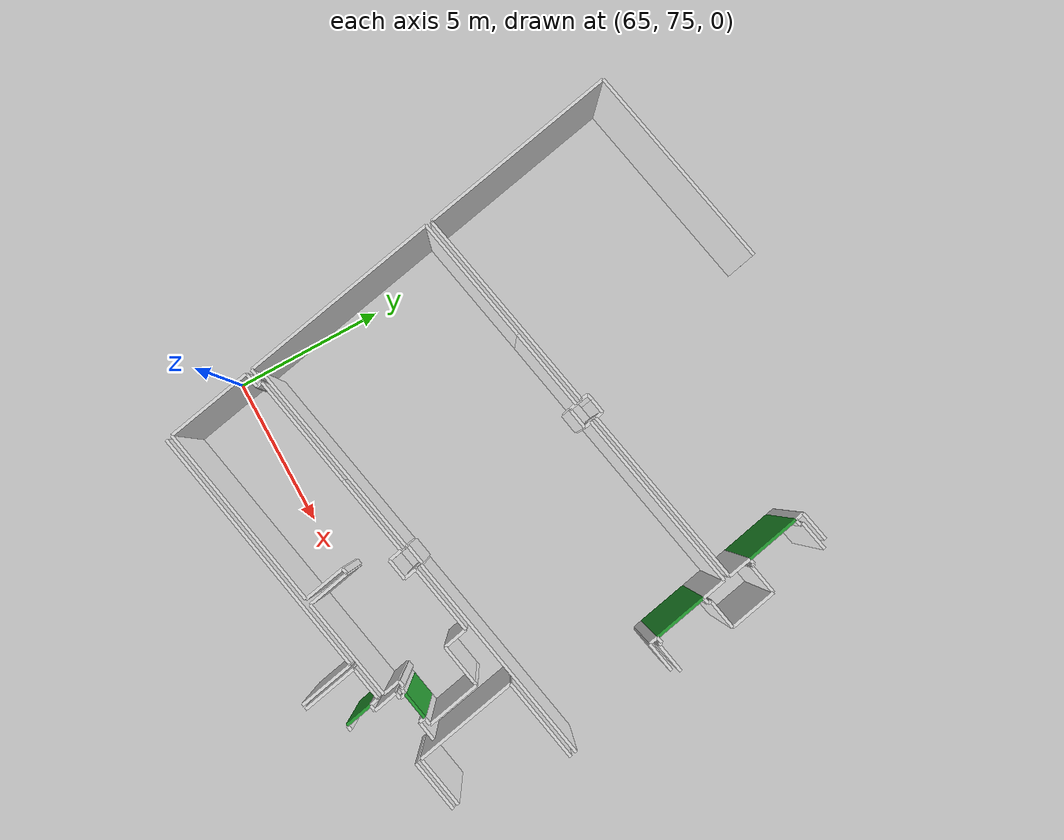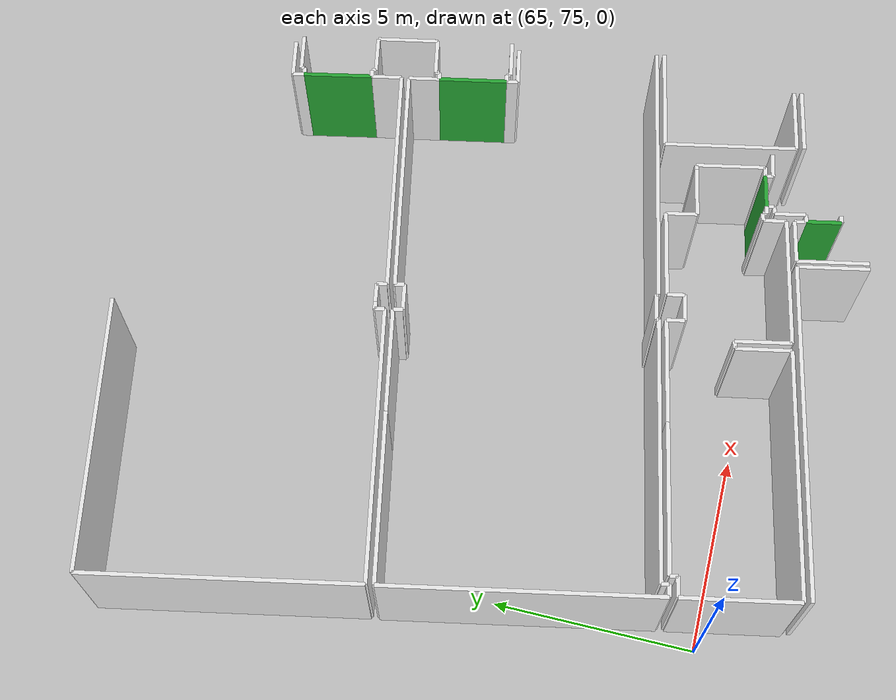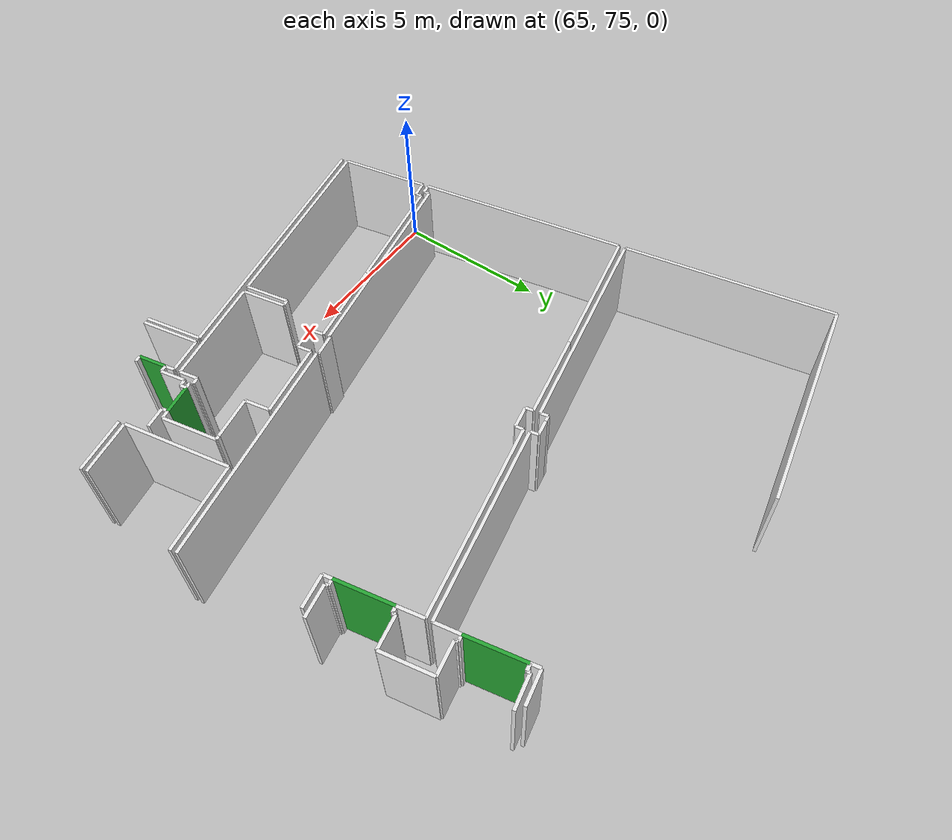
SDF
<sdf version="1.6">
 <world name="default">
  <model name="wall_77.2_87.2_1.5">
   <static>true</static>
   <pose>77.19000000000233 87.18999999994412 1.5 0 0 -1.3690339824572944</pose>
   <link name="link">
    <visual name="visual">
     <geometry><box><size>1.7964409256090668 0.1 3</size></box></geometry>
     <material>
      <script><uri>file://media/materials/scripts/gazebo.material</uri><name>Gazebo/Green</name></script>
     </material>
    </visual>
    <collision name="collision"><geometry><box><size>1.7964409256090668 0.1 3</size></box></geometry></collision>
   </link>
  </model>
  <model name="wall_77.9_83.7_1.5">
   <static>true</static>
   <pose>77.88500000000931 83.6699999999255 1.5 0 0 -1.3744936626731843</pose>
   <link name="link">
    <visual name="visual">
     <geometry><box><size>1.7944637079631676 0.1 3</size></box></geometry>
     <material>
      <script><uri>file://media/materials/scripts/gazebo.material</uri><name>Gazebo/Green</name></script>
     </material>
    </visual>
    <collision name="collision"><geometry><box><size>1.7944637079631676 0.1 3</size></box></geometry></collision>
   </link>
  </model>
  <model name="wall_76.4_75.6_1.5">
   <static>true</static>
   <pose>76.39000000001397 75.57500000018626 1.5 0 0 0.19083110263865674</pose>
   <link name="link">
    <visual name="visual">
     <geometry><box><size>0.8962700485807075 0.1 3</size></box></geometry>
     <material>
      <script><uri>file://media/materials/scripts/gazebo.material</uri><name>Gazebo/Green</name></script>
     </material>
    </visual>
    <collision name="collision"><geometry><box><size>0.8962700485807075 0.1 3</size></box></geometry></collision>
   </link>
  </model>
  <model name="wall_75.8_74.0_1.5">
   <static>true</static>
   <pose>75.83999999999651 74.0 1.5 0 0 -1.3690339824572944</pose>
   <link name="link">
    <visual name="visual">
     <geometry><box><size>0.8982204628045334 0.1 3</size></box></geometry>
     <material>
      <script><uri>file://media/materials/scripts/gazebo.material</uri><name>Gazebo/Green</name></script>
     </material>
    </visual>
    <collision name="collision"><geometry><box><size>0.8982204628045334 0.1 3</size></box></geometry></collision>
   </link>
  </model>
  <model name="wall_78.7_75.2_1.5">
   <static>true</static>
   <pose>78.66500000000815 75.16500000003725 1.5 0 0 -2.946501237082923</pose>
   <link name="link">
    <visual name="visual">
     <geometry><box><size>1.7022925717968513 0.1 3</size></box></geometry>
     <material>
      <script><uri>file://media/materials/scripts/gazebo.material</uri><name>Gazebo/White</name></script>
     </material>
    </visual>
    <collision name="collision"><geometry><box><size>1.7022925717968513 0.1 3</size></box></geometry></collision>
   </link>
  </model>
  <model name="wall_77.5_76.7_1.5">
   <static>true</static>
   <pose>77.5 76.67500000004657 1.5 0 0 1.7653199818507113</pose>
   <link name="link">
    <visual name="visual">
     <geometry><box><size>3.414395993534876 0.1 3</size></box></geometry>
     <material>
      <script><uri>file://media/materials/scripts/gazebo.material</uri><name>Gazebo/White</name></script>
     </material>
    </visual>
    <collision name="collision"><geometry><box><size>3.414395993534876 0.1 3</size></box></geometry></collision>
   </link>
  </model>
  <model name="wall_78.5_78.6_1.5">
   <static>true</static>
   <pose>78.51999999998952 78.61499999999069 1.5 0 0 0.19383178298877288</pose>
   <link name="link">
    <visual name="visual">
     <geometry><box><size>2.7515268488324223 0.1 3</size></box></geometry>
     <material>
      <script><uri>file://media/materials/scripts/gazebo.material</uri><name>Gazebo/White</name></script>
     </material>
    </visual>
    <collision name="collision"><geometry><box><size>2.7515268488324223 0.1 3</size></box></geometry></collision>
   </link>
  </model>
  <model name="wall_77.0_88.2_1.5">
   <static>true</static>
   <pose>76.98000000001048 88.21499999985099 1.5 0 0 1.7748143063542596</pose>
   <link name="link">
    <visual name="visual">
     <geometry><box><size>0.2961418579352255 0.1 3</size></box></geometry>
     <material>
      <script><uri>file://media/materials/scripts/gazebo.material</uri><name>Gazebo/White</name></script>
     </material>
    </visual>
    <collision name="collision"><geometry><box><size>0.2961418579352255 0.1 3</size></box></geometry></collision>
   </link>
  </model>
  <model name="wall_77.4_88.5_1.5">
   <static>true</static>
   <pose>77.44500000000698 88.45999999996275 1.5 0 0 0.19933730516491843</pose>
   <link name="link">
    <visual name="visual">
     <geometry><box><size>1.0100000000277551 0.1 3</size></box></geometry>
     <material>
      <script><uri>file://media/materials/scripts/gazebo.material</uri><name>Gazebo/White</name></script>
     </material>
    </visual>
    <collision name="collision"><geometry><box><size>1.0100000000277551 0.1 3</size></box></geometry></collision>
   </link>
  </model>
  <model name="wall_66.1_90.2_1.5">
   <static>true</static>
   <pose>66.07500000001164 90.18500000005588 1.5 0 0 -2.94475700407996</pose>
   <link name="link">
    <visual name="visual">
     <geometry><box><size>7.005269445227802 0.1 3</size></box></geometry>
     <material>
      <script><uri>file://media/materials/scripts/gazebo.material</uri><name>Gazebo/White</name></script>
     </material>
    </visual>
    <collision name="collision"><geometry><box><size>7.005269445227802 0.1 3</size></box></geometry></collision>
   </link>
  </model>
  <model name="wall_63.3_86.2_1.5">
   <static>true</static>
   <pose>63.304999999993015 86.17999999993481 1.5 0 0 -1.3731111637194056</pose>
   <link name="link">
    <visual name="visual">
     <geometry><box><size>6.771890430420447 0.1 3</size></box></geometry>
     <material>
      <script><uri>file://media/materials/scripts/gazebo.material</uri><name>Gazebo/White</name></script>
     </material>
    </visual>
    <collision name="collision"><geometry><box><size>6.771890430420447 0.1 3</size></box></geometry></collision>
   </link>
  </model>
  <model name="wall_67.4_83.5_1.5">
   <static>true</static>
   <pose>67.40499999999884 83.54000000003725 1.5 0 0 0.1954353271778743</pose>
   <link name="link">
    <visual name="visual">
     <geometry><box><size>7.003320641070759 0.1 3</size></box></geometry>
     <material>
      <script><uri>file://media/materials/scripts/gazebo.material</uri><name>Gazebo/White</name></script>
     </material>
    </visual>
    <collision name="collision"><geometry><box><size>7.003320641070759 0.1 3</size></box></geometry></collision>
   </link>
  </model>
  <model name="wall_70.8_84.3_1.5">
   <static>true</static>
   <pose>70.81500000000233 84.34000000008382 1.5 0 0 1.7761917163720695</pose>
   <link name="link">
    <visual name="visual">
     <geometry><box><size>0.24515301321506852 0.1 3</size></box></geometry>
     <material>
      <script><uri>file://media/materials/scripts/gazebo.material</uri><name>Gazebo/White</name></script>
     </material>
    </visual>
    <collision name="collision"><geometry><box><size>0.24515301321506852 0.1 3</size></box></geometry></collision>
   </link>
  </model>
  <model name="wall_70.9_84.5_1.5">
   <static>true</static>
   <pose>70.88499999998021 84.47999999998137 1.5 0 0 0.20749622662047904</pose>
   <link name="link">
    <visual name="visual">
     <geometry><box><size>0.19416487839942884 0.1 3</size></box></geometry>
     <material>
      <script><uri>file://media/materials/scripts/gazebo.material</uri><name>Gazebo/White</name></script>
     </material>
    </visual>
    <collision name="collision"><geometry><box><size>0.19416487839942884 0.1 3</size></box></geometry></collision>
   </link>
  </model>
  <model name="wall_71.2_84.5_1.5">
   <static>true</static>
   <pose>71.22499999997672 84.5449999999255 1.5 0 0 0.18164882970920815</pose>
   <link name="link">
    <visual name="visual">
     <geometry><box><size>0.49819674824716687 0.1 3</size></box></geometry>
     <material>
      <script><uri>file://media/materials/scripts/gazebo.material</uri><name>Gazebo/White</name></script>
     </material>
    </visual>
    <collision name="collision"><geometry><box><size>0.49819674824716687 0.1 3</size></box></geometry></collision>
   </link>
  </model>
  <model name="wall_71.5_84.5_1.5">
   <static>true</static>
   <pose>71.49499999999534 84.46499999985099 1.5 0 0 -1.3734007667659154</pose>
   <link name="link">
    <visual name="visual">
     <geometry><box><size>0.2549509756887716 0.1 3</size></box></geometry>
     <material>
      <script><uri>file://media/materials/scripts/gazebo.material</uri><name>Gazebo/White</name></script>
     </material>
    </visual>
    <collision name="collision"><geometry><box><size>0.2549509756887716 0.1 3</size></box></geometry></collision>
   </link>
  </model>
  <model name="wall_74.5_84.9_1.5">
   <static>true</static>
   <pose>74.52000000001863 84.93499999982305 1.5 0 0 0.19579248330455945</pose>
   <link name="link">
    <visual name="visual">
     <geometry><box><size>6.116870114680138 0.1 3</size></box></geometry>
     <material>
      <script><uri>file://media/materials/scripts/gazebo.material</uri><name>Gazebo/White</name></script>
     </material>
    </visual>
    <collision name="collision"><geometry><box><size>6.116870114680138 0.1 3</size></box></geometry></collision>
   </link>
  </model>
  <model name="wall_77.4_85.9_1.5">
   <static>true</static>
   <pose>77.44500000000698 85.9199999999255 1.5 0 0 1.7607846146803983</pose>
   <link name="link">
    <visual name="visual">
     <geometry><box><size>0.7942921379528988 0.1 3</size></box></geometry>
     <material>
      <script><uri>file://media/materials/scripts/gazebo.material</uri><name>Gazebo/White</name></script>
     </material>
    </visual>
    <collision name="collision"><geometry><box><size>0.7942921379528988 0.1 3</size></box></geometry></collision>
   </link>
  </model>
  <model name="wall_77.6_84.9_1.5">
   <static>true</static>
   <pose>77.63000000000466 84.94499999983236 1.5 0 0 1.770624971898348</pose>
   <link name="link">
    <visual name="visual">
     <geometry><box><size>0.8060397012984475 0.1 3</size></box></geometry>
     <material>
      <script><uri>file://media/materials/scripts/gazebo.material</uri><name>Gazebo/White</name></script>
     </material>
    </visual>
    <collision name="collision"><geometry><box><size>0.8060397012984475 0.1 3</size></box></geometry></collision>
   </link>
  </model>
  <model name="wall_74.6_84.7_1.5">
   <static>true</static>
   <pose>74.55499999999302 84.74499999987893 1.5 0 0 -2.945481614557841</pose>
   <link name="link">
    <visual name="visual">
     <geometry><box><size>6.107061486488853 0.1 3</size></box></geometry>
     <material>
      <script><uri>file://media/materials/scripts/gazebo.material</uri><name>Gazebo/White</name></script>
     </material>
    </visual>
    <collision name="collision"><geometry><box><size>6.107061486488853 0.1 3</size></box></geometry></collision>
   </link>
  </model>
  <model name="wall_71.6_84.0_1.5">
   <static>true</static>
   <pose>71.58499999999185 84.03000000002794 1.5 0 0 -1.365400937450167</pose>
   <link name="link">
    <visual name="visual">
     <geometry><box><size>0.24515301320319682 0.1 3</size></box></geometry>
     <material>
      <script><uri>file://media/materials/scripts/gazebo.material</uri><name>Gazebo/White</name></script>
     </material>
    </visual>
    <collision name="collision"><geometry><box><size>0.24515301320319682 0.1 3</size></box></geometry></collision>
   </link>
  </model>
  <model name="wall_71.3_83.8_1.5">
   <static>true</static>
   <pose>71.26999999998952 83.84499999997206 1.5 0 0 -2.9526954722081817</pose>
   <link name="link">
    <visual name="visual">
     <geometry><box><size>0.6923149572864328 0.1 3</size></box></geometry>
     <material>
      <script><uri>file://media/materials/scripts/gazebo.material</uri><name>Gazebo/White</name></script>
     </material>
    </visual>
    <collision name="collision"><geometry><box><size>0.6923149572864328 0.1 3</size></box></geometry></collision>
   </link>
  </model>
  <model name="wall_70.9_83.9_1.5">
   <static>true</static>
   <pose>70.90499999999884 83.89999999990687 1.5 0 0 1.7761917157522207</pose>
   <link name="link">
    <visual name="visual">
     <geometry><box><size>0.24515301365907008 0.1 3</size></box></geometry>
     <material>
      <script><uri>file://media/materials/scripts/gazebo.material</uri><name>Gazebo/White</name></script>
     </material>
    </visual>
    <collision name="collision"><geometry><box><size>0.24515301365907008 0.1 3</size></box></geometry></collision>
   </link>
  </model>
  <model name="wall_69.5_83.8_1.5">
   <static>true</static>
   <pose>69.54999999998836 83.76000000000931 1.5 0 0 -2.948538600466728</pose>
   <link name="link">
    <visual name="visual">
     <geometry><box><size>2.7103505308710134 0.1 3</size></box></geometry>
     <material>
      <script><uri>file://media/materials/scripts/gazebo.material</uri><name>Gazebo/White</name></script>
     </material>
    </visual>
    <collision name="collision"><geometry><box><size>2.7103505308710134 0.1 3</size></box></geometry></collision>
   </link>
  </model>
  <model name="wall_66.1_83.1_1.5">
   <static>true</static>
   <pose>66.10999999998603 83.0800000000745 1.5 0 0 -2.9451086705483704</pose>
   <link name="link">
    <visual name="visual">
     <geometry><box><size>4.30278979262453 0.1 3</size></box></geometry>
     <material>
      <script><uri>file://media/materials/scripts/gazebo.material</uri><name>Gazebo/White</name></script>
     </material>
    </visual>
    <collision name="collision"><geometry><box><size>4.30278979262453 0.1 3</size></box></geometry></collision>
   </link>
  </model>
  <model name="wall_64.7_79.3_1.5">
   <static>true</static>
   <pose>64.66500000000815 79.34000000008382 1.5 0 0 -1.3731111637109774</pose>
   <link name="link">
    <visual name="visual">
     <geometry><box><size>6.771890430431879 0.1 3</size></box></geometry>
     <material>
      <script><uri>file://media/materials/scripts/gazebo.material</uri><name>Gazebo/White</name></script>
     </material>
    </visual>
    <collision name="collision"><geometry><box><size>6.771890430431879 0.1 3</size></box></geometry></collision>
   </link>
  </model>
  <model name="wall_65.5_76.1_1.5">
   <static>true</static>
   <pose>65.48000000001048 76.05000000004657 1.5 0 0 0.19739556003644376</pose>
   <link name="link">
    <visual name="visual">
     <geometry><box><size>0.30594117081511046 0.1 3</size></box></geometry>
     <material>
      <script><uri>file://media/materials/scripts/gazebo.material</uri><name>Gazebo/White</name></script>
     </material>
    </visual>
    <collision name="collision"><geometry><box><size>0.30594117081511046 0.1 3</size></box></geometry></collision>
   </link>
  </model>
  <model name="wall_65.6_76.2_1.5">
   <static>true</static>
   <pose>65.61000000001513 76.1699999999255 1.5 0 0 1.7894652729085172</pose>
   <link name="link">
    <visual name="visual">
     <geometry><box><size>0.18439088885038563 0.1 3</size></box></geometry>
     <material>
      <script><uri>file://media/materials/scripts/gazebo.material</uri><name>Gazebo/White</name></script>
     </material>
    </visual>
    <collision name="collision"><geometry><box><size>0.18439088885038563 0.1 3</size></box></geometry></collision>
   </link>
  </model>
  <model name="wall_68.9_76.9_1.5">
   <static>true</static>
   <pose>68.88000000000466 76.91499999980442 1.5 0 0 0.19651862351580723</pose>
   <link name="link">
    <visual name="visual">
     <geometry><box><size>6.709135562767745 0.1 3</size></box></geometry>
     <material>
      <script><uri>file://media/materials/scripts/gazebo.material</uri><name>Gazebo/White</name></script>
     </material>
    </visual>
    <collision name="collision"><geometry><box><size>6.709135562767745 0.1 3</size></box></geometry></collision>
   </link>
  </model>
  <model name="wall_72.2_77.6_1.5">
   <static>true</static>
   <pose>72.16499999997905 77.59499999997206 1.5 0 0 1.7681918857492749</pose>
   <link name="link">
    <visual name="visual">
     <geometry><box><size>0.05099019541172539 0.1 3</size></box></geometry>
     <material>
      <script><uri>file://media/materials/scripts/gazebo.material</uri><name>Gazebo/White</name></script>
     </material>
    </visual>
    <collision name="collision"><geometry><box><size>0.05099019541172539 0.1 3</size></box></geometry></collision>
   </link>
  </model>
  <model name="wall_72.5_77.7_1.5">
   <static>true</static>
   <pose>72.5 77.68500000005588 1.5 0 0 0.18889718070517353</pose>
   <link name="link">
    <visual name="visual">
     <geometry><box><size>0.6923149572561651 0.1 3</size></box></geometry>
     <material>
      <script><uri>file://media/materials/scripts/gazebo.material</uri><name>Gazebo/White</name></script>
     </material>
    </visual>
    <collision name="collision"><geometry><box><size>0.6923149572561651 0.1 3</size></box></geometry></collision>
   </link>
  </model>
  <model name="wall_72.8_77.7_1.5">
   <static>true</static>
   <pose>72.84500000000116 77.72500000009313 1.5 0 0 -1.3734007671688915</pose>
   <link name="link">
    <visual name="visual">
     <geometry><box><size>0.05099019494369148 0.1 3</size></box></geometry>
     <material>
      <script><uri>file://media/materials/scripts/gazebo.material</uri><name>Gazebo/White</name></script>
     </material>
    </visual>
    <collision name="collision"><geometry><box><size>0.05099019494369148 0.1 3</size></box></geometry></collision>
   </link>
  </model>
  <model name="wall_76.3_78.4_1.5">
   <static>true</static>
   <pose>76.33999999999651 78.39000000013039 1.5 0 0 0.19519049174249012</pose>
   <link name="link">
    <visual name="visual">
     <geometry><box><size>7.115110680814747 0.1 3</size></box></geometry>
     <material>
      <script><uri>file://media/materials/scripts/gazebo.material</uri><name>Gazebo/White</name></script>
     </material>
    </visual>
    <collision name="collision"><geometry><box><size>7.115110680814747 0.1 3</size></box></geometry></collision>
   </link>
  </model>
  <model name="wall_78.6_82.6_1.5">
   <static>true</static>
   <pose>78.60999999998603 82.59499999997206 1.5 0 0 -2.950090935171577</pose>
   <link name="link">
    <visual name="visual">
     <geometry><box><size>0.9982484660355146 0.1 3</size></box></geometry>
     <material>
      <script><uri>file://media/materials/scripts/gazebo.material</uri><name>Gazebo/White</name></script>
     </material>
    </visual>
    <collision name="collision"><geometry><box><size>0.9982484660355146 0.1 3</size></box></geometry></collision>
   </link>
  </model>
  <model name="wall_78.1_82.6_1.5">
   <static>true</static>
   <pose>78.08999999999651 82.64500000001863 1.5 0 0 1.7748143063542596</pose>
   <link name="link">
    <visual name="visual">
     <geometry><box><size>0.2961418579352255 0.1 3</size></box></geometry>
     <material>
      <script><uri>file://media/materials/scripts/gazebo.material</uri><name>Gazebo/White</name></script>
     </material>
    </visual>
    <collision name="collision"><geometry><box><size>0.2961418579352255 0.1 3</size></box></geometry></collision>
   </link>
  </model>
  <model name="wall_65.6_74.4_1.5">
   <static>true</static>
   <pose>65.64999999999418 74.41499999980442 1.5 0 0 -1.3740852295395196</pose>
   <link name="link">
    <visual name="visual">
     <geometry><box><size>2.8652574055940305 0.1 3</size></box></geometry>
     <material>
      <script><uri>file://media/materials/scripts/gazebo.material</uri><name>Gazebo/White</name></script>
     </material>
    </visual>
    <collision name="collision"><geometry><box><size>2.8652574055940305 0.1 3</size></box></geometry></collision>
   </link>
  </model>
  <model name="wall_69.0_73.6_1.5">
   <static>true</static>
   <pose>69.01999999998952 73.61999999987893 1.5 0 0 0.19490490500725635</pose>
   <link name="link">
    <visual name="visual">
     <geometry><box><size>6.299269798985721 0.1 3</size></box></geometry>
     <material>
      <script><uri>file://media/materials/scripts/gazebo.material</uri><name>Gazebo/White</name></script>
     </material>
    </visual>
    <collision name="collision"><geometry><box><size>6.299269798985721 0.1 3</size></box></geometry></collision>
   </link>
  </model>
  <model name="wall_72.0_74.9_1.5">
   <static>true</static>
   <pose>71.97500000000582 74.9199999999255 1.5 0 0 1.7640078106303387</pose>
   <link name="link">
    <visual name="visual">
     <geometry><box><size>1.4061649973136765 0.1 3</size></box></geometry>
     <material>
      <script><uri>file://media/materials/scripts/gazebo.material</uri><name>Gazebo/White</name></script>
     </material>
    </visual>
    <collision name="collision"><geometry><box><size>1.4061649973136765 0.1 3</size></box></geometry></collision>
   </link>
  </model>
  <model name="wall_71.9_75.6_1.5">
   <static>true</static>
   <pose>71.93500000002678 75.62999999988824 1.5 0 0 0.20749622662047904</pose>
   <link name="link">
    <visual name="visual">
     <geometry><box><size>0.19416487839942884 0.1 3</size></box></geometry>
     <material>
      <script><uri>file://media/materials/scripts/gazebo.material</uri><name>Gazebo/White</name></script>
     </material>
    </visual>
    <collision name="collision"><geometry><box><size>0.19416487839942884 0.1 3</size></box></geometry></collision>
   </link>
  </model>
  <model name="wall_72.2_75.0_1.5">
   <static>true</static>
   <pose>72.1700000000128 74.95999999996275 1.5 0 0 -1.3706152588342921</pose>
   <link name="link">
    <visual name="visual">
     <geometry><box><size>1.408119313011009 0.1 3</size></box></geometry>
     <material>
      <script><uri>file://media/materials/scripts/gazebo.material</uri><name>Gazebo/White</name></script>
     </material>
    </visual>
    <collision name="collision"><geometry><box><size>1.408119313011009 0.1 3</size></box></geometry></collision>
   </link>
  </model>
  <model name="wall_74.0_74.6_1.5">
   <static>true</static>
   <pose>73.98000000001048 74.60000000009313 1.5 0 0 0.19509141650355566</pose>
   <link name="link">
    <visual name="visual">
     <geometry><box><size>3.404585143650806 0.1 3</size></box></geometry>
     <material>
      <script><uri>file://media/materials/scripts/gazebo.material</uri><name>Gazebo/White</name></script>
     </material>
    </visual>
    <collision name="collision"><geometry><box><size>3.404585143650806 0.1 3</size></box></geometry></collision>
   </link>
  </model>
  <model name="wall_75.6_75.2_1.5">
   <static>true</static>
   <pose>75.59000000002561 75.21999999997206 1.5 0 0 1.7748143065135507</pose>
   <link name="link">
    <visual name="visual">
     <geometry><box><size>0.5922837154144474 0.1 3</size></box></geometry>
     <material>
      <script><uri>file://media/materials/scripts/gazebo.material</uri><name>Gazebo/White</name></script>
     </material>
    </visual>
    <collision name="collision"><geometry><box><size>0.5922837154144474 0.1 3</size></box></geometry></collision>
   </link>
  </model>
  <model name="wall_75.6_75.5_1.5">
   <static>true</static>
   <pose>75.63000000000466 75.52999999979511 1.5 0 0 0.1973955600737564</pose>
   <link name="link">
    <visual name="visual">
     <geometry><box><size>0.20396078050535543 0.1 3</size></box></geometry>
     <material>
      <script><uri>file://media/materials/scripts/gazebo.material</uri><name>Gazebo/White</name></script>
     </material>
    </visual>
    <collision name="collision"><geometry><box><size>0.20396078050535543 0.1 3</size></box></geometry></collision>
   </link>
  </model>
  <model name="wall_75.7_75.5_1.5">
   <static>true</static>
   <pose>75.73999999999069 75.5 1.5 0 0 -1.3734007660495133</pose>
   <link name="link">
    <visual name="visual">
     <geometry><box><size>0.10198038991021388 0.1 3</size></box></geometry>
     <material>
      <script><uri>file://media/materials/scripts/gazebo.material</uri><name>Gazebo/White</name></script>
     </material>
    </visual>
    <collision name="collision"><geometry><box><size>0.10198038991021388 0.1 3</size></box></geometry></collision>
   </link>
  </model>
  <model name="wall_75.9_75.5_1.5">
   <static>true</static>
   <pose>75.85000000000582 75.47000000020489 1.5 0 0 0.19739556001778746</pose>
   <link name="link">
    <visual name="visual">
     <geometry><box><size>0.20396078056243275 0.1 3</size></box></geometry>
     <material>
      <script><uri>file://media/materials/scripts/gazebo.material</uri><name>Gazebo/White</name></script>
     </material>
    </visual>
    <collision name="collision"><geometry><box><size>0.20396078056243275 0.1 3</size></box></geometry></collision>
   </link>
  </model>
  <model name="wall_77.0_75.7_1.5">
   <static>true</static>
   <pose>76.9550000000163 75.68500000005588 1.5 0 0 0.19739555913347878</pose>
   <link name="link">
    <visual name="visual">
     <geometry><box><size>0.25495097564310976 0.1 3</size></box></geometry>
     <material>
      <script><uri>file://media/materials/scripts/gazebo.material</uri><name>Gazebo/White</name></script>
     </material>
    </visual>
    <collision name="collision"><geometry><box><size>0.25495097564310976 0.1 3</size></box></geometry></collision>
   </link>
  </model>
  <model name="wall_76.9_76.6_1.5">
   <static>true</static>
   <pose>76.90499999999884 76.5800000000745 1.5 0 0 1.7692968585652145</pose>
   <link name="link">
    <visual name="visual">
     <geometry><box><size>1.774852106740809 0.1 3</size></box></geometry>
     <material>
      <script><uri>file://media/materials/scripts/gazebo.material</uri><name>Gazebo/White</name></script>
     </material>
    </visual>
    <collision name="collision"><geometry><box><size>1.774852106740809 0.1 3</size></box></geometry></collision>
   </link>
  </model>
  <model name="wall_76.7_77.4_1.5">
   <static>true</static>
   <pose>76.6699999999837 77.43500000005588 1.5 0 0 -2.896613988408541</pose>
   <link name="link">
    <visual name="visual">
     <geometry><box><size>0.12369316882725834 0.1 3</size></box></geometry>
     <material>
      <script><uri>file://media/materials/scripts/gazebo.material</uri><name>Gazebo/White</name></script>
     </material>
    </visual>
    <collision name="collision"><geometry><box><size>0.12369316882725834 0.1 3</size></box></geometry></collision>
   </link>
  </model>
  <model name="wall_76.0_77.3_1.5">
   <static>true</static>
   <pose>75.95999999999185 77.2949999999255 1.5 0 0 -2.9516043656694166</pose>
   <link name="link">
    <visual name="visual">
     <geometry><box><size>1.3238202294759405 0.1 3</size></box></geometry>
     <material>
      <script><uri>file://media/materials/scripts/gazebo.material</uri><name>Gazebo/White</name></script>
     </material>
    </visual>
    <collision name="collision"><geometry><box><size>1.3238202294759405 0.1 3</size></box></geometry></collision>
   </link>
  </model>
  <model name="wall_75.2_77.6_1.5">
   <static>true</static>
   <pose>75.23000000001048 77.56000000005588 1.5 0 0 1.7731179550758815</pose>
   <link name="link">
    <visual name="visual">
     <geometry><box><size>0.7962411697460803 0.1 3</size></box></geometry>
     <material>
      <script><uri>file://media/materials/scripts/gazebo.material</uri><name>Gazebo/White</name></script>
     </material>
    </visual>
    <collision name="collision"><geometry><box><size>0.7962411697460803 0.1 3</size></box></geometry></collision>
   </link>
  </model>
  <model name="wall_74.0_77.7_1.5">
   <static>true</static>
   <pose>74.02000000001863 77.72500000009313 1.5 0 0 -2.9450481572857363</pose>
   <link name="link">
    <visual name="visual">
     <geometry><box><size>2.3043654224557644 0.1 3</size></box></geometry>
     <material>
      <script><uri>file://media/materials/scripts/gazebo.material</uri><name>Gazebo/White</name></script>
     </material>
    </visual>
    <collision name="collision"><geometry><box><size>2.3043654224557644 0.1 3</size></box></geometry></collision>
   </link>
  </model>
  <model name="wall_72.9_77.3_1.5">
   <static>true</static>
   <pose>72.93499999999767 77.28499999991618 1.5 0 0 -1.364472432915976</pose>
   <link name="link">
    <visual name="visual">
     <geometry><box><size>0.4393176528871807 0.1 3</size></box></geometry>
     <material>
      <script><uri>file://media/materials/scripts/gazebo.material</uri><name>Gazebo/White</name></script>
     </material>
    </visual>
    <collision name="collision"><geometry><box><size>0.4393176528871807 0.1 3</size></box></geometry></collision>
   </link>
  </model>
  <model name="wall_72.6_77.0_1.5">
   <static>true</static>
   <pose>72.63499999998021 77.00499999988824 1.5 0 0 -2.9553698133356825</pose>
   <link name="link">
    <visual name="visual">
     <geometry><box><size>0.7021395872432744 0.1 3</size></box></geometry>
     <material>
      <script><uri>file://media/materials/scripts/gazebo.material</uri><name>Gazebo/White</name></script>
     </material>
    </visual>
    <collision name="collision"><geometry><box><size>0.7021395872432744 0.1 3</size></box></geometry></collision>
   </link>
  </model>
  <model name="wall_72.2_77.2_1.5">
   <static>true</static>
   <pose>72.24499999999534 77.15999999991618 1.5 0 0 1.77255867106901</pose>
   <link name="link">
    <visual name="visual">
     <geometry><box><size>0.44911023139643436 0.1 3</size></box></geometry>
     <material>
      <script><uri>file://media/materials/scripts/gazebo.material</uri><name>Gazebo/White</name></script>
     </material>
    </visual>
    <collision name="collision"><geometry><box><size>0.44911023139643436 0.1 3</size></box></geometry></collision>
   </link>
  </model>
  <model name="wall_70.9_77.1_1.5">
   <static>true</static>
   <pose>70.875 77.11499999999069 1.5 0 0 -2.9441970938159456</pose>
   <link name="link">
    <visual name="visual">
     <geometry><box><size>2.702480342186824 0.1 3</size></box></geometry>
     <material>
      <script><uri>file://media/materials/scripts/gazebo.material</uri><name>Gazebo/White</name></script>
     </material>
    </visual>
    <collision name="collision"><geometry><box><size>2.702480342186824 0.1 3</size></box></geometry></collision>
   </link>
  </model>
  <model name="wall_67.7_76.5_1.5">
   <static>true</static>
   <pose>67.68499999999767 76.47999999998137 1.5 0 0 -2.945744281719576</pose>
   <link name="link">
    <visual name="visual">
     <geometry><box><size>3.8026964117835984 0.1 3</size></box></geometry>
     <material>
      <script><uri>file://media/materials/scripts/gazebo.material</uri><name>Gazebo/White</name></script>
     </material>
    </visual>
    <collision name="collision"><geometry><box><size>3.8026964117835984 0.1 3</size></box></geometry></collision>
   </link>
  </model>
  <model name="wall_65.8_76.0_1.5">
   <static>true</static>
   <pose>65.83999999999651 76.01499999989755 1.5 0 0 -1.363300100406013</pose>
   <link name="link">
    <visual name="visual">
     <geometry><box><size>0.19416487833047835 0.1 3</size></box></geometry>
     <material>
      <script><uri>file://media/materials/scripts/gazebo.material</uri><name>Gazebo/White</name></script>
     </material>
    </visual>
    <collision name="collision"><geometry><box><size>0.19416487833047835 0.1 3</size></box></geometry></collision>
   </link>
  </model>
  <model name="wall_65.6_75.9_1.5">
   <static>true</static>
   <pose>65.61499999999069 75.86999999987893 1.5 0 0 -2.9402755450289626</pose>
   <link name="link">
    <visual name="visual">
     <geometry><box><size>0.5000999900114971 0.1 3</size></box></geometry>
     <material>
      <script><uri>file://media/materials/scripts/gazebo.material</uri><name>Gazebo/White</name></script>
     </material>
    </visual>
    <collision name="collision"><geometry><box><size>0.5000999900114971 0.1 3</size></box></geometry></collision>
   </link>
  </model>
  <model name="wall_75.7_74.6_1.5">
   <static>true</static>
   <pose>75.72000000000116 74.58499999996275 1.5 0 0 1.7748143063542596</pose>
   <link name="link">
    <visual name="visual">
     <geometry><box><size>0.2961418579352255 0.1 3</size></box></geometry>
     <material>
      <script><uri>file://media/materials/scripts/gazebo.material</uri><name>Gazebo/White</name></script>
     </material>
    </visual>
    <collision name="collision"><geometry><box><size>0.2961418579352255 0.1 3</size></box></geometry></collision>
   </link>
  </model>
  <model name="wall_75.1_74.6_1.5">
   <static>true</static>
   <pose>75.13500000000931 74.61999999987893 1.5 0 0 -2.945930194077732</pose>
   <link name="link">
    <visual name="visual">
     <geometry><box><size>1.131591799218755 0.1 3</size></box></geometry>
     <material>
      <script><uri>file://media/materials/scripts/gazebo.material</uri><name>Gazebo/White</name></script>
     </material>
    </visual>
    <collision name="collision"><geometry><box><size>1.131591799218755 0.1 3</size></box></geometry></collision>
   </link>
  </model>
  <model name="wall_74.8_73.6_1.5">
   <static>true</static>
   <pose>74.76000000000931 73.60999999986961 1.5 0 0 -1.3734007669325783</pose>
   <link name="link">
    <visual name="visual">
     <geometry><box><size>1.8356470247080154 0.1 3</size></box></geometry>
     <material>
      <script><uri>file://media/materials/scripts/gazebo.material</uri><name>Gazebo/White</name></script>
     </material>
    </visual>
    <collision name="collision"><geometry><box><size>1.8356470247080154 0.1 3</size></box></geometry></collision>
   </link>
  </model>
  <model name="wall_74.6_73.6_1.5">
   <static>true</static>
   <pose>74.60999999998603 73.5800000000745 1.5 0 0 1.7681918866572148</pose>
   <link name="link">
    <visual name="visual">
     <geometry><box><size>1.8356470247080154 0.1 3</size></box></geometry>
     <material>
      <script><uri>file://media/materials/scripts/gazebo.material</uri><name>Gazebo/White</name></script>
     </material>
    </visual>
    <collision name="collision"><geometry><box><size>1.8356470247080154 0.1 3</size></box></geometry></collision>
   </link>
  </model>
  <model name="wall_70.2_73.6_1.5">
   <static>true</static>
   <pose>70.19999999998254 73.64500000001863 1.5 0 0 -2.9466987942383156</pose>
   <link name="link">
    <visual name="visual">
     <geometry><box><size>8.623253446356873 0.1 3</size></box></geometry>
     <material>
      <script><uri>file://media/materials/scripts/gazebo.material</uri><name>Gazebo/White</name></script>
     </material>
    </visual>
    <collision name="collision"><geometry><box><size>8.623253446356873 0.1 3</size></box></geometry></collision>
   </link>
  </model>
  <model name="wall_78.7_75.0_1.5">
   <static>true</static>
   <pose>78.7049999999872 74.97500000009313 1.5 0 0 -2.946501237082923</pose>
   <link name="link">
    <visual name="visual">
     <geometry><box><size>1.7022925717968513 0.1 3</size></box></geometry>
     <material>
      <script><uri>file://media/materials/scripts/gazebo.material</uri><name>Gazebo/White</name></script>
     </material>
    </visual>
    <collision name="collision"><geometry><box><size>1.7022925717968513 0.1 3</size></box></geometry></collision>
   </link>
  </model>
  <model name="wall_78.8_82.8_1.5">
   <static>true</static>
   <pose>78.77000000001863 82.82499999995343 1.5 0 0 -2.950090935171577</pose>
   <link name="link">
    <visual name="visual">
     <geometry><box><size>0.9982484660355146 0.1 3</size></box></geometry>
     <material>
      <script><uri>file://media/materials/scripts/gazebo.material</uri><name>Gazebo/White</name></script>
     </material>
    </visual>
    <collision name="collision"><geometry><box><size>0.9982484660355146 0.1 3</size></box></geometry></collision>
   </link>
  </model>
  <model name="wall_78.3_82.8_1.5">
   <static>true</static>
   <pose>78.27000000001863 82.78000000002794 1.5 0 0 1.7681918866447774</pose>
   <link name="link">
    <visual name="visual">
     <geometry><box><size>0.10198039036683233 0.1 3</size></box></geometry>
     <material>
      <script><uri>file://media/materials/scripts/gazebo.material</uri><name>Gazebo/White</name></script>
     </material>
    </visual>
    <collision name="collision"><geometry><box><size>0.10198039036683233 0.1 3</size></box></geometry></collision>
   </link>
  </model>
  <model name="wall_78.2_82.8_1.5">
   <static>true</static>
   <pose>78.16000000000349 82.81000000005588 1.5 0 0 -2.9441970935720057</pose>
   <link name="link">
    <visual name="visual">
     <geometry><box><size>0.20396078056243275 0.1 3</size></box></geometry>
     <material>
      <script><uri>file://media/materials/scripts/gazebo.material</uri><name>Gazebo/White</name></script>
     </material>
    </visual>
    <collision name="collision"><geometry><box><size>0.20396078056243275 0.1 3</size></box></geometry></collision>
   </link>
  </model>
  <model name="wall_77.8_84.6_1.5">
   <static>true</static>
   <pose>77.80999999999767 84.56999999983236 1.5 0 0 0.1973955600737564</pose>
   <link name="link">
    <visual name="visual">
     <geometry><box><size>0.20396078050535543 0.1 3</size></box></geometry>
     <material>
      <script><uri>file://media/materials/scripts/gazebo.material</uri><name>Gazebo/White</name></script>
     </material>
    </visual>
    <collision name="collision"><geometry><box><size>0.20396078050535543 0.1 3</size></box></geometry></collision>
   </link>
  </model>
  <model name="wall_77.9_84.6_1.5">
   <static>true</static>
   <pose>77.89999999999418 84.63999999989755 1.5 0 0 1.7681918860850883</pose>
   <link name="link">
    <visual name="visual">
     <geometry><box><size>0.10198039035541688 0.1 3</size></box></geometry>
     <material>
      <script><uri>file://media/materials/scripts/gazebo.material</uri><name>Gazebo/White</name></script>
     </material>
    </visual>
    <collision name="collision"><geometry><box><size>0.10198039035541688 0.1 3</size></box></geometry></collision>
   </link>
  </model>
  <model name="wall_78.4_84.8_1.5">
   <static>true</static>
   <pose>78.38000000000466 84.78499999991618 1.5 0 0 0.19150171841821614</pose>
   <link name="link">
    <visual name="visual">
     <geometry><box><size>0.9982484660355146 0.1 3</size></box></geometry>
     <material>
      <script><uri>file://media/materials/scripts/gazebo.material</uri><name>Gazebo/White</name></script>
     </material>
    </visual>
    <collision name="collision"><geometry><box><size>0.9982484660355146 0.1 3</size></box></geometry></collision>
   </link>
  </model>
  <model name="wall_78.7_85.7_1.5">
   <static>true</static>
   <pose>78.71499999999651 85.65999999991618 1.5 0 0 1.7669588416387134</pose>
   <link name="link">
    <visual name="visual">
     <geometry><box><size>1.5905030651252767 0.1 3</size></box></geometry>
     <material>
      <script><uri>file://media/materials/scripts/gazebo.material</uri><name>Gazebo/White</name></script>
     </material>
    </visual>
    <collision name="collision"><geometry><box><size>1.5905030651252767 0.1 3</size></box></geometry></collision>
   </link>
  </model>
  <model name="wall_78.1_86.3_1.5">
   <static>true</static>
   <pose>78.07000000000698 86.34499999997206 1.5 0 0 -2.950090935171577</pose>
   <link name="link">
    <visual name="visual">
     <geometry><box><size>0.9982484660355146 0.1 3</size></box></geometry>
     <material>
      <script><uri>file://media/materials/scripts/gazebo.material</uri><name>Gazebo/White</name></script>
     </material>
    </visual>
    <collision name="collision"><geometry><box><size>0.9982484660355146 0.1 3</size></box></geometry></collision>
   </link>
  </model>
  <model name="wall_77.6_86.3_1.5">
   <static>true</static>
   <pose>77.57000000000698 86.30000000004657 1.5 0 0 1.7681918866447774</pose>
   <link name="link">
    <visual name="visual">
     <geometry><box><size>0.10198039036683233 0.1 3</size></box></geometry>
     <material>
      <script><uri>file://media/materials/scripts/gazebo.material</uri><name>Gazebo/White</name></script>
     </material>
    </visual>
    <collision name="collision"><geometry><box><size>0.10198039036683233 0.1 3</size></box></geometry></collision>
   </link>
  </model>
  <model name="wall_77.5_86.3_1.5">
   <static>true</static>
   <pose>77.46499999999651 86.3300000000745 1.5 0 0 -2.9340964269693144</pose>
   <link name="link">
    <visual name="visual">
     <geometry><box><size>0.19416487839942884 0.1 3</size></box></geometry>
     <material>
      <script><uri>file://media/materials/scripts/gazebo.material</uri><name>Gazebo/White</name></script>
     </material>
    </visual>
    <collision name="collision"><geometry><box><size>0.19416487839942884 0.1 3</size></box></geometry></collision>
   </link>
  </model>
  <model name="wall_77.1_88.1_1.5">
   <static>true</static>
   <pose>77.11000000001513 88.08999999985099 1.5 0 0 0.19739556001778746</pose>
   <link name="link">
    <visual name="visual">
     <geometry><box><size>0.20396078056243275 0.1 3</size></box></geometry>
     <material>
      <script><uri>file://media/materials/scripts/gazebo.material</uri><name>Gazebo/White</name></script>
     </material>
    </visual>
    <collision name="collision"><geometry><box><size>0.20396078056243275 0.1 3</size></box></geometry></collision>
   </link>
  </model>
  <model name="wall_77.2_88.2_1.5">
   <static>true</static>
   <pose>77.20000000001164 88.15500000002794 1.5 0 0 1.7894652721210018</pose>
   <link name="link">
    <visual name="visual">
     <geometry><box><size>0.09219544488607884 0.1 3</size></box></geometry>
     <material>
      <script><uri>file://media/materials/scripts/gazebo.material</uri><name>Gazebo/White</name></script>
     </material>
    </visual>
    <collision name="collision"><geometry><box><size>0.09219544488607884 0.1 3</size></box></geometry></collision>
   </link>
  </model>
  <model name="wall_77.7_88.3_1.5">
   <static>true</static>
   <pose>77.67999999999302 88.30000000004657 1.5 0 0 0.20131710810466522</pose>
   <link name="link">
    <visual name="visual">
     <geometry><box><size>1.0001999799298806 0.1 3</size></box></geometry>
     <material>
      <script><uri>file://media/materials/scripts/gazebo.material</uri><name>Gazebo/White</name></script>
     </material>
    </visual>
    <collision name="collision"><geometry><box><size>1.0001999799298806 0.1 3</size></box></geometry></collision>
   </link>
  </model>
  <model name="wall_76.0_75.4_1.5">
   <static>true</static>
   <pose>75.97000000000116 75.39500000001863 1.5 0 0 -1.3633001009000834</pose>
   <link name="link">
    <visual name="visual">
     <geometry><box><size>0.1941648787861511 0.1 3</size></box></geometry>
     <material>
      <script><uri>file://media/materials/scripts/gazebo.material</uri><name>Gazebo/White</name></script>
     </material>
    </visual>
    <collision name="collision"><geometry><box><size>0.1941648787861511 0.1 3</size></box></geometry></collision>
   </link>
  </model>
  <model name="wall_75.9_75.3_1.5">
   <static>true</static>
   <pose>75.88999999998487 75.27999999979511 1.5 0 0 -2.9441970935720057</pose>
   <link name="link">
    <visual name="visual">
     <geometry><box><size>0.20396078056243275 0.1 3</size></box></geometry>
     <material>
      <script><uri>file://media/materials/scripts/gazebo.material</uri><name>Gazebo/White</name></script>
     </material>
    </visual>
    <collision name="collision"><geometry><box><size>0.20396078056243275 0.1 3</size></box></geometry></collision>
   </link>
  </model>
  <model name="wall_75.9_74.9_1.5">
   <static>true</static>
   <pose>75.86999999999534 74.86999999987893 1.5 0 0 -1.3684746983247826</pose>
   <link name="link">
    <visual name="visual">
     <geometry><box><size>0.7962411693016136 0.1 3</size></box></geometry>
     <material>
      <script><uri>file://media/materials/scripts/gazebo.material</uri><name>Gazebo/White</name></script>
     </material>
    </visual>
    <collision name="collision"><geometry><box><size>0.7962411693016136 0.1 3</size></box></geometry></collision>
   </link>
  </model>
  <model name="wall_75.9_74.5_1.5">
   <static>true</static>
   <pose>75.85000000000582 74.45999999996275 1.5 0 0 -2.9441970935720057</pose>
   <link name="link">
    <visual name="visual">
     <geometry><box><size>0.20396078056243275 0.1 3</size></box></geometry>
     <material>
      <script><uri>file://media/materials/scripts/gazebo.material</uri><name>Gazebo/White</name></script>
     </material>
    </visual>
    <collision name="collision"><geometry><box><size>0.20396078056243275 0.1 3</size></box></geometry></collision>
   </link>
  </model>
  <model name="wall_76.0_73.6_1.5">
   <static>true</static>
   <pose>76.02499999999418 73.5800000000745 1.5 0 0 0.20749622662047904</pose>
   <link name="link">
    <visual name="visual">
     <geometry><box><size>0.19416487839942884 0.1 3</size></box></geometry>
     <material>
      <script><uri>file://media/materials/scripts/gazebo.material</uri><name>Gazebo/White</name></script>
     </material>
    </visual>
    <collision name="collision"><geometry><box><size>0.19416487839942884 0.1 3</size></box></geometry></collision>
   </link>
  </model>
  <model name="wall_77.2_75.5_1.5">
   <static>true</static>
   <pose>77.19000000000233 75.53000000002794 1.5 0 0 -2.956244704132245</pose>
   <link name="link">
    <visual name="visual">
     <geometry><box><size>0.6511528237924986 0.1 3</size></box></geometry>
     <material>
      <script><uri>file://media/materials/scripts/gazebo.material</uri><name>Gazebo/White</name></script>
     </material>
    </visual>
    <collision name="collision"><geometry><box><size>0.6511528237924986 0.1 3</size></box></geometry></collision>
   </link>
  </model>
  <model name="wall_76.9_75.6_1.5">
   <static>true</static>
   <pose>76.85000000000582 75.56500000017695 1.5 0 0 1.77829255318378</pose>
   <link name="link">
    <visual name="visual">
     <geometry><box><size>0.19416487833047835 0.1 3</size></box></geometry>
     <material>
      <script><uri>file://media/materials/scripts/gazebo.material</uri><name>Gazebo/White</name></script>
     </material>
    </visual>
    <collision name="collision"><geometry><box><size>0.19416487833047835 0.1 3</size></box></geometry></collision>
   </link>
  </model>
 </world>
</sdf>
